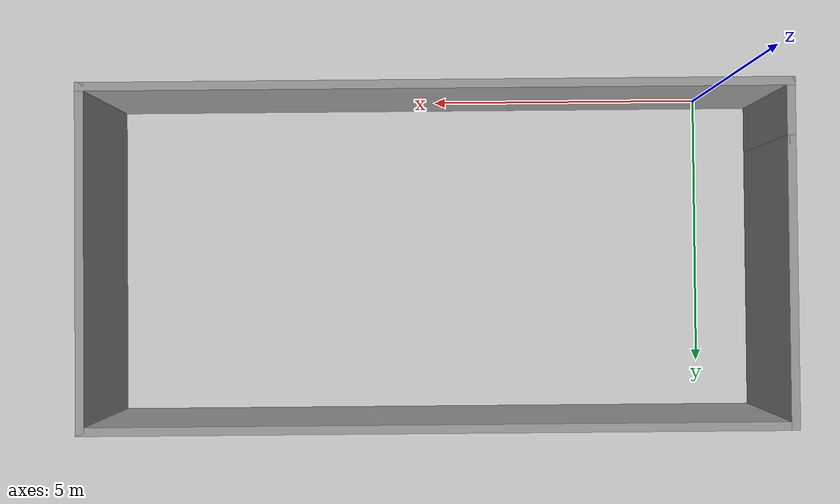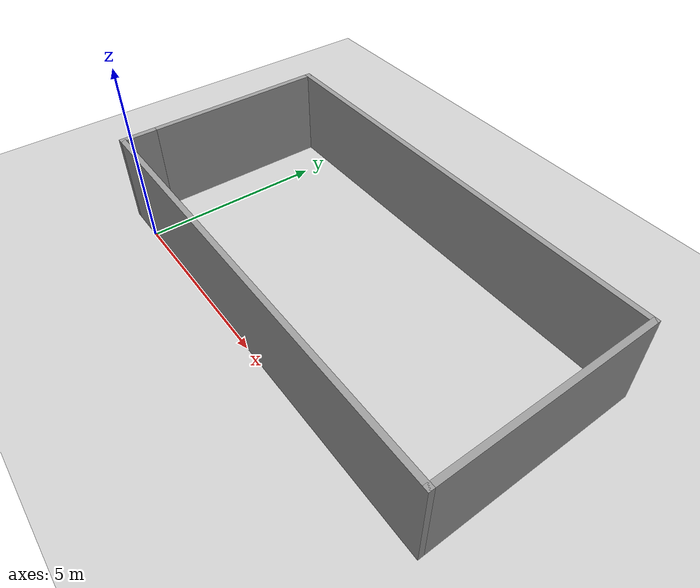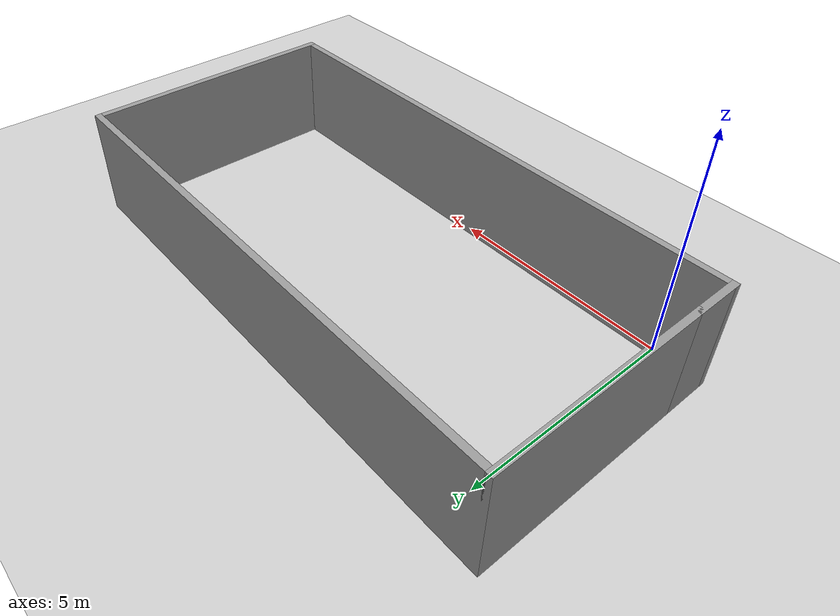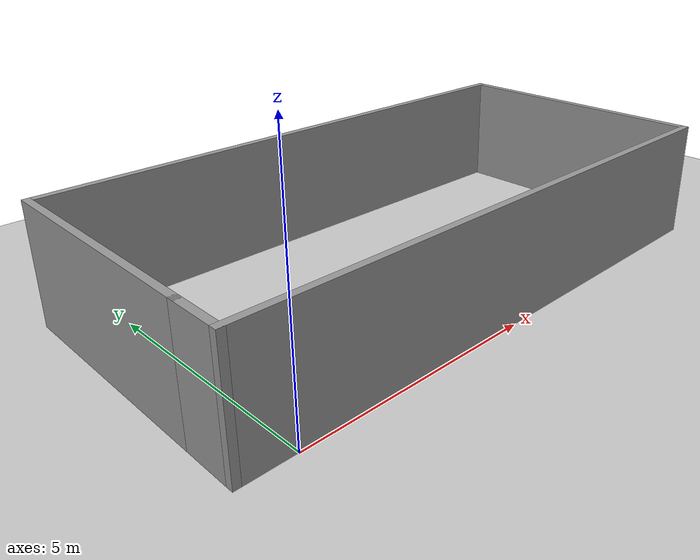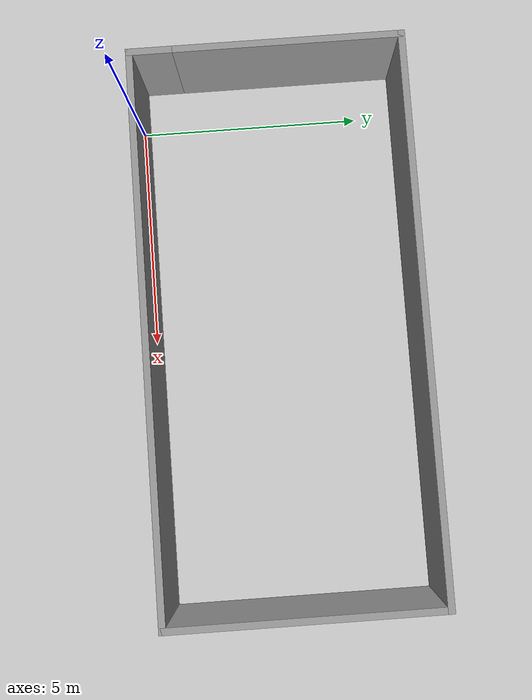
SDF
<sdf version='1.4'>
  <world name='default'>
    <!-- A global light source -->
    <include>
      <uri>model://sun</uri>
    </include>

    <!-- A ground plane -->
    <include>
      <uri>model://ground_plane</uri>
    </include>

    <include>
      <name>beer0</name>
      <uri>model://box3</uri>
      <static>true</static>
      <pose>5 3 0 0 0 0</pose>
    </include>

    <physics type="ode">
      <real_time_update_rate>1000.0</real_time_update_rate>
      <max_step_size>0.001</max_step_size>
      <real_time_factor>1</real_time_factor>
      <ode>
        <solver>
          <type>quick</type>
          <iters>150</iters>
          <precon_iters>0</precon_iters>
          <sor>1.400000</sor>
          <use_dynamic_moi_rescaling>1</use_dynamic_moi_rescaling>
        </solver>
        <constraints>
          <cfm>0.00001</cfm>
          <erp>0.2</erp>
          <contact_max_correcting_vel>2000.000000</contact_max_correcting_vel>
          <contact_surface_layer>0.01000</contact_surface_layer>
        </constraints>
      </ode>
    </physics>

    <!-- Load world -->

    <scene>
      <ambient>0.4 0.4 0.4 1</ambient>
      <background>0.7 0.7 0.7 1</background>
      <shadows>true</shadows>
    </scene>

    <gui fullscreen='0'>
      <camera name='user_camera'>
        <pose>0.8 0.0 12.0 0 1.5708 0</pose>
        <view_controller>orbit</view_controller>
      </camera>
    </gui>
  </world>
</sdf>

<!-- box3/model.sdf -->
<sdf version='1.7'>
  <model name='Untitled'>
    <pose>-3.49822 -1.19894 0 0 -0 0</pose>
    <link name='Wall_0'>
      <collision name='Wall_0_Collision'>
        <geometry>
          <box>
            <size>5 0.15 2.5</size>
          </box>
        </geometry>
        <pose>0 0 1.25 0 -0 0</pose>
      </collision>
      <visual name='Wall_0_Visual'>
        <pose>0 0 1.25 0 -0 0</pose>
        <geometry>
          <box>
            <size>5 0.15 2.5</size>
          </box>
        </geometry>
        <material>
          <script>
            <uri>file://media/materials/scripts/gazebo.material</uri>
            <name>Gazebo/Grey</name>
          </script>
          <ambient>1 1 1 1</ambient>
        </material>
        <meta>
          <layer>0</layer>
        </meta>
      </visual>
      <pose>-6.05 0.5 0 0 -0 1.5708</pose>
    </link>
    <link name='Wall_1'>
      <collision name='Wall_1_Collision'>
        <geometry>
          <box>
            <size>12.25 0.15 2.5</size>
          </box>
        </geometry>
        <pose>0 0 1.25 0 -0 0</pose>
      </collision>
      <visual name='Wall_1_Visual'>
        <pose>0 0 1.25 0 -0 0</pose>
        <geometry>
          <box>
            <size>12.25 0.15 2.5</size>
          </box>
        </geometry>
        <material>
          <script>
            <uri>file://media/materials/scripts/gazebo.material</uri>
            <name>Gazebo/Grey</name>
          </script>
          <ambient>1 1 1 1</ambient>
        </material>
        <meta>
          <layer>0</layer>
        </meta>
      </visual>
      <pose>0 2.925 0 0 -0 0</pose>
    </link>
    <link name='Wall_2'>
      <collision name='Wall_2_Collision'>
        <geometry>
          <box>
            <size>6 0.15 2.5</size>
          </box>
        </geometry>
        <pose>0 0 1.25 0 -0 0</pose>
      </collision>
      <visual name='Wall_2_Visual'>
        <pose>0 0 1.25 0 -0 0</pose>
        <geometry>
          <box>
            <size>6 0.15 2.5</size>
          </box>
        </geometry>
        <material>
          <script>
            <uri>file://media/materials/scripts/gazebo.material</uri>
            <name>Gazebo/Grey</name>
          </script>
          <ambient>1 1 1 1</ambient>
        </material>
        <meta>
          <layer>0</layer>
        </meta>
      </visual>
      <pose>6.05 -0 0 0 -0 -1.5708</pose>
    </link>
    <link name='Wall_3'>
      <collision name='Wall_3_Collision'>
        <geometry>
          <box>
            <size>12.25 0.15 2.5</size>
          </box>
        </geometry>
        <pose>0 0 1.25 0 -0 0</pose>
      </collision>
      <visual name='Wall_3_Visual'>
        <pose>0 0 1.25 0 -0 0</pose>
        <geometry>
          <box>
            <size>12.25 0.15 2.5</size>
          </box>
        </geometry>
        <material>
          <script>
            <uri>file://media/materials/scripts/gazebo.material</uri>
            <name>Gazebo/Grey</name>
          </script>
          <ambient>1 1 1 1</ambient>
        </material>
        <meta>
          <layer>0</layer>
        </meta>
      </visual>
      <pose>0 -2.925 0 0 -0 3.14159</pose>
    </link>
    <link name='Wall_4'>
      <collision name='Wall_4_Collision'>
        <geometry>
          <box>
            <size>1.15 0.15 2.5</size>
          </box>
        </geometry>
        <pose>0 0 1.25 0 -0 0</pose>
      </collision>
      <visual name='Wall_4_Visual'>
        <pose>0 0 1.25 0 -0 0</pose>
        <geometry>
          <box>
            <size>1.15 0.15 2.5</size>
          </box>
        </geometry>
        <material>
          <script>
            <uri>file://media/materials/scripts/gazebo.material</uri>
            <name>Gazebo/Grey</name>
          </script>
          <ambient>1 1 1 1</ambient>
        </material>
        <meta>
          <layer>0</layer>
        </meta>
      </visual>
      <pose>-6.05 -2.425 0 0 -0 1.5708</pose>
    </link>
    <static>1</static>
  </model>
</sdf>
